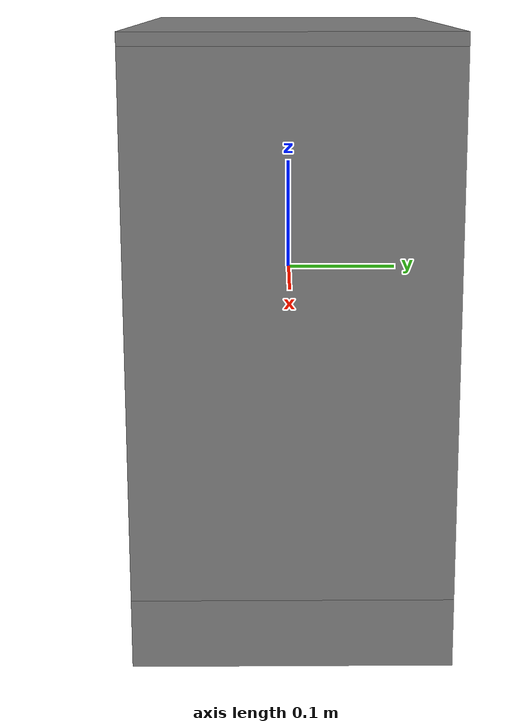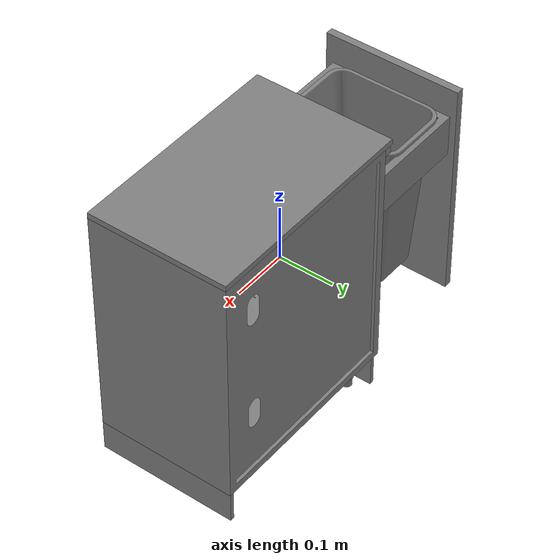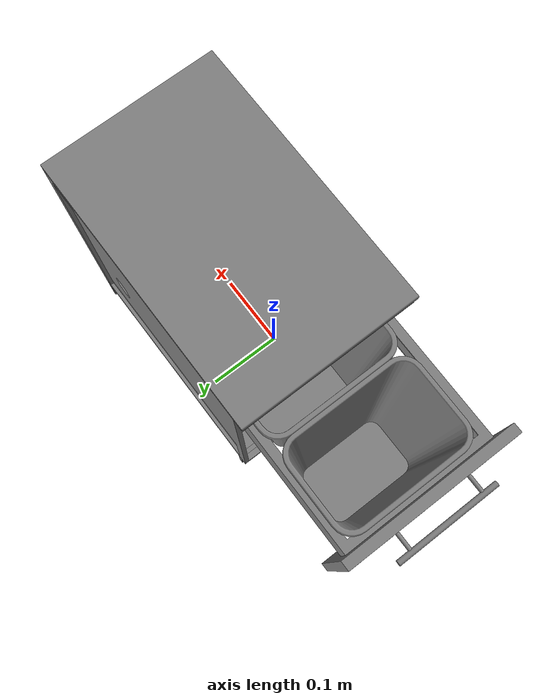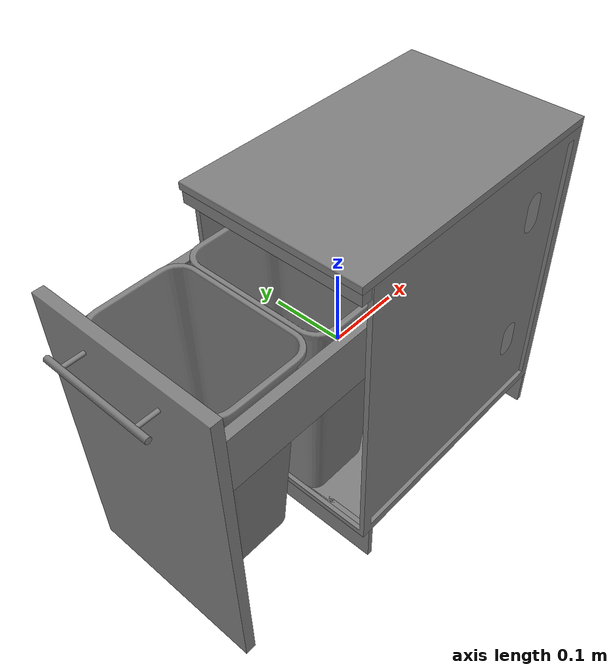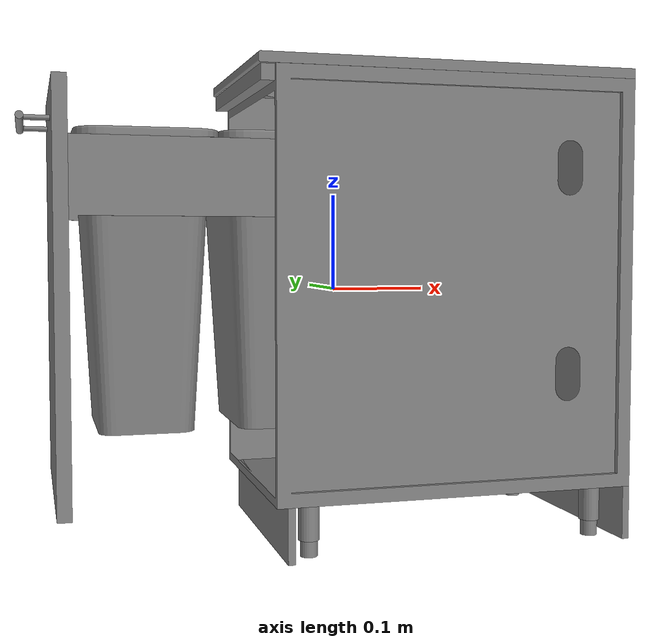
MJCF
<mujoco model="partnet_uff68587a-b3c7-4b31-b5a6-e63301708383">
    <compiler angle="radian" />
    <size njmax="500" nconmax="100" />
    <asset>
        <mesh name="original-28" file="original-28.stl" scale="0.4 0.4 0.4" />
        <mesh name="original-27" file="original-27.stl" scale="0.4 0.4 0.4" />
        <mesh name="original-21" file="original-21.stl" scale="0.4 0.4 0.4" />
        <mesh name="original-22" file="original-22.stl" scale="0.4 0.4 0.4" />
        <mesh name="original-19" file="original-19.stl" scale="0.4 0.4 0.4" />
        <mesh name="original-24" file="original-24.stl" scale="0.4 0.4 0.4" />
        <mesh name="original-25" file="original-25.stl" scale="0.4 0.4 0.4" />
        <mesh name="original-26" file="original-26.stl" scale="0.4 0.4 0.4" />
        <mesh name="original-4" file="original-4.stl" scale="0.4 0.4 0.4" />
        <mesh name="original-3" file="original-3.stl" scale="0.4 0.4 0.4" />
        <mesh name="original-2" file="original-2.stl" scale="0.4 0.4 0.4" />
        <mesh name="original-16" file="original-16.stl" scale="0.4 0.4 0.4" />
        <mesh name="original-8" file="original-8.stl" scale="0.4 0.4 0.4" />
        <mesh name="original-13" file="original-13.stl" scale="0.4 0.4 0.4" />
        <mesh name="original-9" file="original-9.stl" scale="0.4 0.4 0.4" />
        <mesh name="original-6" file="original-6.stl" scale="0.4 0.4 0.4" />
        <mesh name="original-15" file="original-15.stl" scale="0.4 0.4 0.4" />
        <mesh name="original-11" file="original-11.stl" scale="0.4 0.4 0.4" />
        <mesh name="original-17" file="original-17.stl" scale="0.4 0.4 0.4" />
        <mesh name="original-12" file="original-12.stl" scale="0.4 0.4 0.4" />
        <mesh name="original-7" file="original-7.stl" scale="0.4 0.4 0.4" />
        <mesh name="original-1" file="original-1.stl" scale="0.4 0.4 0.4" />
        <mesh name="original-10" file="original-10.stl" scale="0.4 0.4 0.4" />
    </asset>
    <worldbody>
    <body>
        <body name="object">
        <geom quat="0.5 0.5 -0.5 -0.5" type="mesh" group="0" mesh="original-4" conaffinity="0" contype="0" />
        <geom quat="0.5 0.5 -0.5 -0.5" type="mesh" group="0" mesh="original-3" conaffinity="0" contype="0" />
        <geom quat="0.5 0.5 -0.5 -0.5" type="mesh" group="0" mesh="original-2" conaffinity="0" contype="0" />
        <geom quat="0.5 0.5 -0.5 -0.5" type="mesh" group="0" mesh="original-16" conaffinity="0" contype="0" />
        <geom quat="0.5 0.5 -0.5 -0.5" type="mesh" group="0" mesh="original-8" conaffinity="0" contype="0" />
        <geom quat="0.5 0.5 -0.5 -0.5" type="mesh" group="0" mesh="original-13" conaffinity="0" contype="0" />
        <geom quat="0.5 0.5 -0.5 -0.5" type="mesh" group="0" mesh="original-9" conaffinity="0" contype="0" />
        <geom quat="0.5 0.5 -0.5 -0.5" type="mesh" group="0" mesh="original-6" conaffinity="0" contype="0" />
        <geom quat="0.5 0.5 -0.5 -0.5" type="mesh" group="0" mesh="original-15" conaffinity="0" contype="0" />
        <geom quat="0.5 0.5 -0.5 -0.5" type="mesh" group="0" mesh="original-11" conaffinity="0" contype="0" />
        <geom quat="0.5 0.5 -0.5 -0.5" type="mesh" group="0" mesh="original-17" conaffinity="0" contype="0" />
        <geom quat="0.5 0.5 -0.5 -0.5" type="mesh" group="0" mesh="original-12" conaffinity="0" contype="0" />
        <geom quat="0.5 0.5 -0.5 -0.5" type="mesh" group="0" mesh="original-7" conaffinity="0" contype="0" />
        <geom quat="0.5 0.5 -0.5 -0.5" type="mesh" group="0" mesh="original-1" conaffinity="0" contype="0" />
        <geom quat="0.5 0.5 -0.5 -0.5" type="mesh" group="0" mesh="original-10" conaffinity="0" contype="0" />
        <body name="link_0" pos="0.0 0.0 0.0" quat="0.5 0.5 -0.5 -0.5">
            <inertial pos="-0.00735092 0.0335858 0.137734" quat="0.935955 0.351252 0.0094227 0.0228188" mass="258.838" diaginertia="25.2069 20.5538 15.9737" />
            <joint name="joint_0" pos="0.0 0.0 0.0" axis="0 0 1" type="slide" limited="true" range="-0.1952 0.0" />
            <geom type="mesh" group="0" mesh="original-28" />
            <geom type="mesh" group="0" mesh="original-27" />
            <geom type="mesh" group="0" mesh="original-21" />
            <geom type="mesh" group="0" mesh="original-22" />
            <geom type="mesh" group="0" mesh="original-19" name="panel" />
            <geom type="mesh" group="0" mesh="original-24" />
            <geom type="mesh" group="0" mesh="original-25" />
            <geom type="mesh" group="0" mesh="original-26" />
        </body>
     </body>
        <site name="bottom_site" pos="0 0 -0.3" rgba="0 0 0 0" size="0.005" />
        <site name="top_site" pos="0 0 0.3" rgba="0 0 0 0" size="0.005" />
        <site name="horizontal_radius_site" pos="0.3 0 0" rgba="0 0 0 0" size="0.1" />
    </body>
    </worldbody>
</mujoco>
